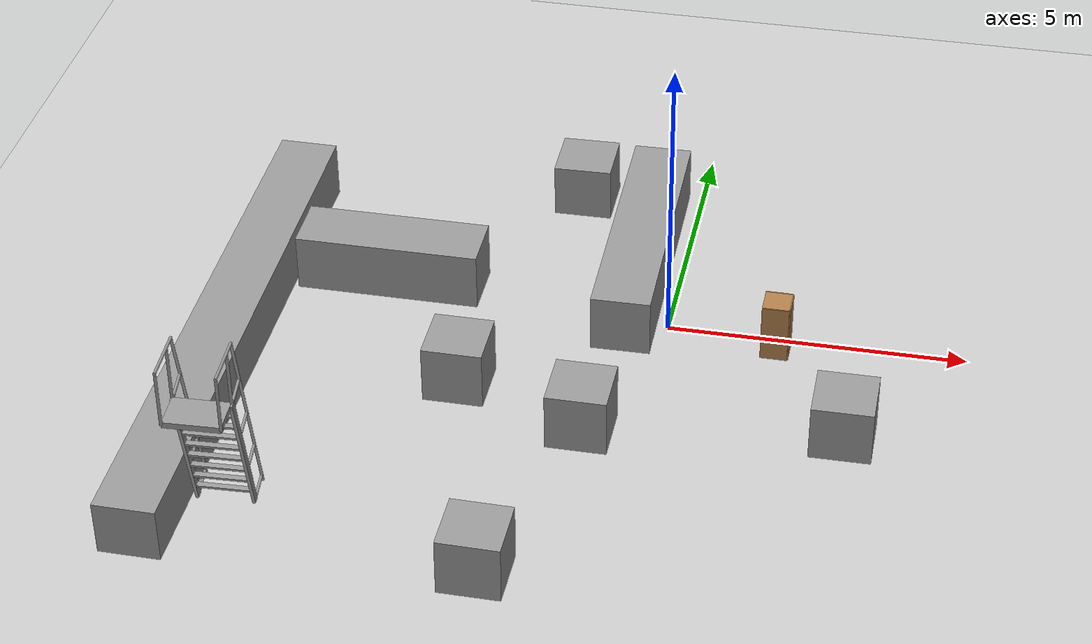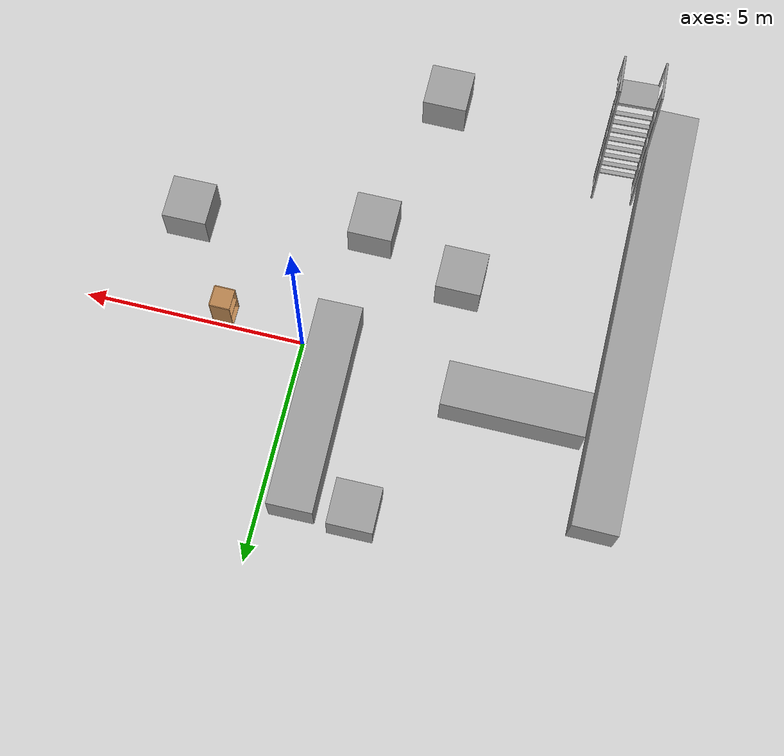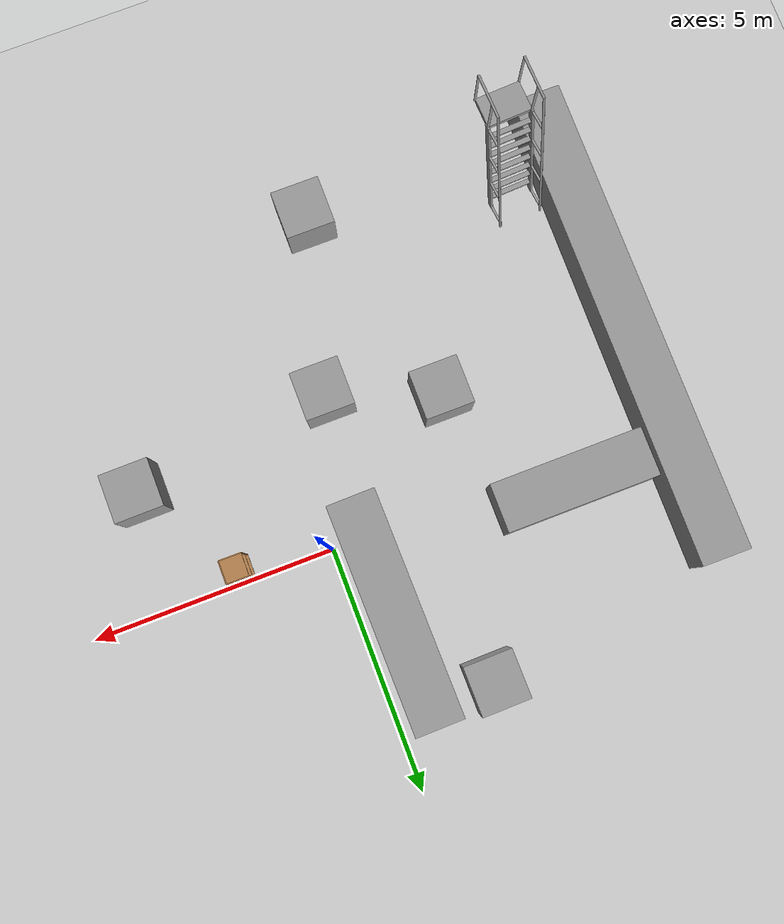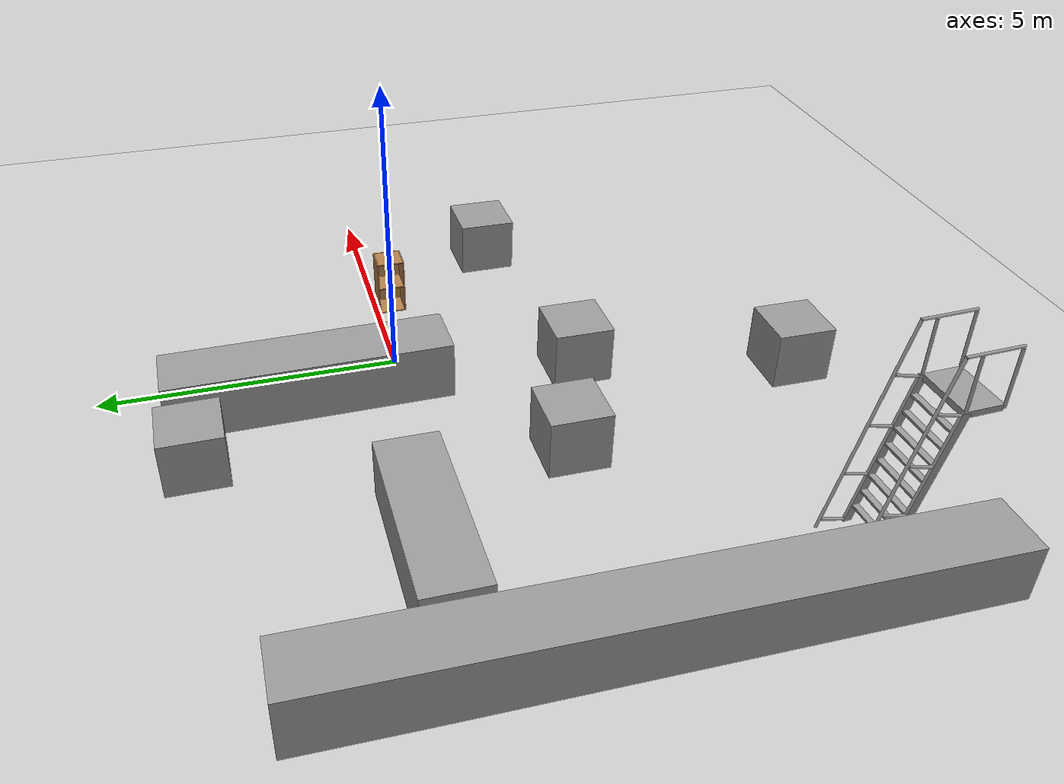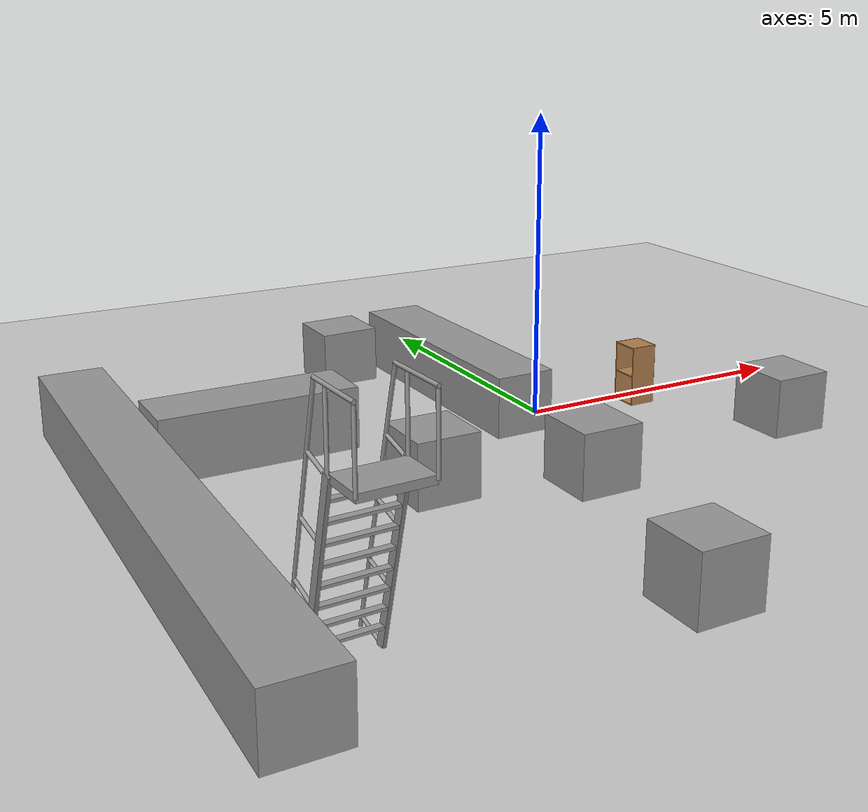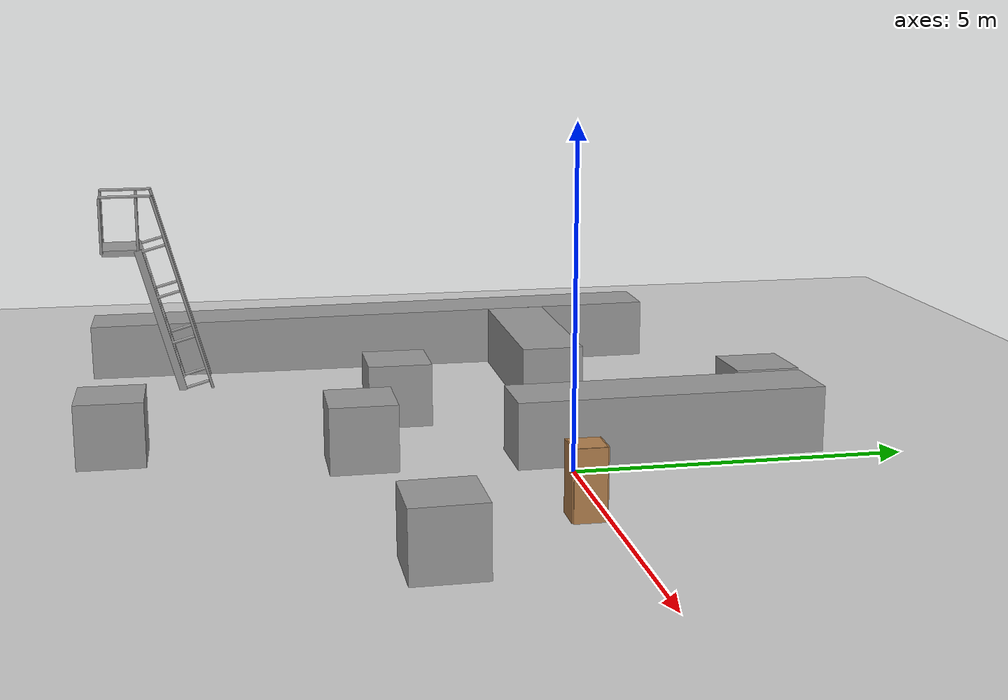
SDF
<sdf version="1.6">
 <world name="default">
  <light name="sun" type="directional">
   <pose>0 0 10 0 -0 0</pose>
   <diffuse>0.8 0.8 0.8 1</diffuse>
   <specular>0.1 0.1 0.1 1</specular>
   <attenuation>
    <range>1000</range>
    <constant>0.9</constant>
    <linear>0.01</linear>
    <quadratic>0.001</quadratic>
   </attenuation>
   <direction>-0.5 0.5 -1</direction>
  </light>
  <model name="ground_plane">
   <static>1</static>
   <link name="link">
    <collision name="collision">
     <geometry><plane><normal>0 0 1</normal><size>100 100</size></plane></geometry>
     <surface><friction><ode><mu>100</mu><mu2>50</mu2></ode></friction></surface>
    </collision>
    <visual name="visual">
     <cast_shadows>0</cast_shadows>
     <geometry><plane><normal>0 0 1</normal><size>100 100</size></plane></geometry>
     <material>
      <script><uri>file://media/materials/scripts/gazebo.material</uri><name>Gazebo/Grey</name></script>
     </material>
    </visual>
   </link>
  </model>
  <gravity>0 0 -9.8</gravity>
  <magnetic_field>6e-06 2.3e-05 -4.2e-05</magnetic_field>
  <atmosphere type="adiabatic"/>
  <physics name="default_physics" default="0" type="ode">
   <max_step_size>0.001</max_step_size>
   <real_time_factor>1</real_time_factor>
   <real_time_update_rate>1000</real_time_update_rate>
  </physics>
  <scene><ambient>0.4 0.4 0.4 1</ambient><background>0.7 0.7 0.7 1</background><shadows>1</shadows></scene>
  <spherical_coordinates>
   <surface_model>EARTH_WGS84</surface_model>
   <latitude_deg>0</latitude_deg>
   <longitude_deg>0</longitude_deg>
   <elevation>0</elevation>
   <heading_deg>0</heading_deg>
  </spherical_coordinates>
  <model name="cabinet">
   <static>1</static>
   <link name="cabinet_bottom_plate">
    <inertial>
     <pose>0 0 -1 0 -0 0</pose>
     <inertia><ixx>2.05</ixx><ixy>0</ixy><ixz>0</ixz><iyy>2.05</iyy><iyz>0</iyz><izz>2.05</izz></inertia>
     <mass>25</mass>
    </inertial>
    <collision name="cabinet_bottom_plate_geom">
     <pose>0 0 0.01 0 -0 0</pose>
     <geometry><box><size>0.45 0.45 0.02</size></box></geometry>
    </collision>
    <visual name="cabinet_bottom_plate_geom_visual">
     <pose>0 0 0.01 0 -0 0</pose>
     <geometry><box><size>0.45 0.45 0.02</size></box></geometry>
     <material>
      <script><uri>file://media/materials/scripts/gazebo.material</uri><name>Gazebo/Wood</name></script>
     </material>
    </visual>
    <collision name="cabinet_bottom_plate_geom_cabinet_back_plate">
     <pose>0.235 0 0.51 0 -0 0</pose>
     <geometry><box><size>0.02 0.45 1.02</size></box></geometry>
    </collision>
    <visual name="cabinet_bottom_plate_geom_cabinet_back_plate_visual">
     <pose>0.235 0 0.51 0 -0 0</pose>
     <geometry><box><size>0.02 0.45 1.02</size></box></geometry>
     <material>
      <script><uri>file://media/materials/scripts/gazebo.material</uri><name>Gazebo/Wood</name></script>
     </material>
    </visual>
    <collision name="cabinet_bottom_plate_geom_cabinet_left_plate">
     <pose>0 0.235 0.51 0 -0 0</pose>
     <geometry><box><size>0.45 0.02 1.02</size></box></geometry>
    </collision>
    <visual name="cabinet_bottom_plate_geom_cabinet_left_plate_visual">
     <pose>0 0.235 0.51 0 -0 0</pose>
     <geometry><box><size>0.45 0.02 1.02</size></box></geometry>
     <material>
      <script><uri>file://media/materials/scripts/gazebo.material</uri><name>Gazebo/Wood</name></script>
     </material>
    </visual>
    <collision name="cabinet_bottom_plate_geom_cabinet_middle_plate">
     <pose>0 0 0.51 0 -0 0</pose>
     <geometry><box><size>0.45 0.45 0.02</size></box></geometry>
    </collision>
    <visual name="cabinet_bottom_plate_geom_cabinet_middle_plate_visual">
     <pose>0 0 0.51 0 -0 0</pose>
     <geometry><box><size>0.45 0.45 0.02</size></box></geometry>
     <material>
      <script><uri>file://media/materials/scripts/gazebo.material</uri><name>Gazebo/Wood</name></script>
     </material>
    </visual>
    <collision name="cabinet_bottom_plate_geom_cabinet_right_plate">
     <pose>0 -0.235 0.51 0 -0 0</pose>
     <geometry><box><size>0.45 0.02 1.02</size></box></geometry>
    </collision>
    <visual name="cabinet_bottom_plate_geom_cabinet_right_plate_visual">
     <pose>0 -0.235 0.51 0 -0 0</pose>
     <geometry><box><size>0.45 0.02 1.02</size></box></geometry>
     <material>
      <script><uri>file://media/materials/scripts/gazebo.material</uri><name>Gazebo/Wood</name></script>
     </material>
    </visual>
    <collision name="cabinet_bottom_plate_geom_cabinet_top_plate">
     <pose>0 0 1.01 0 -0 0</pose>
     <geometry><box><size>0.45 0.45 0.02</size></box></geometry>
    </collision>
    <visual name="cabinet_bottom_plate_geom_cabinet_top_plate_visual">
     <pose>0 0 1.01 0 -0 0</pose>
     <geometry><box><size>0.45 0.45 0.02</size></box></geometry>
     <material>
      <script><uri>file://media/materials/scripts/gazebo.material</uri><name>Gazebo/Wood</name></script>
     </material>
    </visual>
   </link>
   <pose>1.83949 -0.283684 0 0 0 -0.003676</pose>
  </model>
  <model name="ladder_75deg_2rails">
   <static>1</static>
   <link name="step0">
    <pose>0 0.071453 0.266667 0 -0 0</pose>
    <inertial>
     <mass>9.75482</mass>
     <inertia>
      <ixx>0.00957124</ixx>
      <iyy>0.65963</iyy>
      <izz>0.666842</izz>
      <ixy>0</ixy>
      <ixz>0</ixz>
      <iyz>0</iyz>
     </inertia>
    </inertial>
    <collision name="collision"><geometry><box><size>0.9 0.1016 0.0381</size></box></geometry></collision>
    <visual name="visual">
     <geometry><box><size>0.9 0.1016 0.0381</size></box></geometry>
     <material>
      <script><uri>file://media/materials/scripts/gazebo.material</uri><name>Gazebo/Grey</name></script>
     </material>
    </visual>
   </link>
   <link name="step1">
    <pose>0 0.142906 0.533333 0 -0 0</pose>
    <inertial>
     <mass>9.75482</mass>
     <inertia>
      <ixx>0.00957124</ixx>
      <iyy>0.65963</iyy>
      <izz>0.666842</izz>
      <ixy>0</ixy>
      <ixz>0</ixz>
      <iyz>0</iyz>
     </inertia>
    </inertial>
    <collision name="collision"><geometry><box><size>0.9 0.1016 0.0381</size></box></geometry></collision>
    <visual name="visual">
     <geometry><box><size>0.9 0.1016 0.0381</size></box></geometry>
     <material>
      <script><uri>file://media/materials/scripts/gazebo.material</uri><name>Gazebo/Grey</name></script>
     </material>
    </visual>
   </link>
   <link name="step2">
    <pose>0 0.214359 0.8 0 -0 0</pose>
    <inertial>
     <mass>9.75482</mass>
     <inertia>
      <ixx>0.00957124</ixx>
      <iyy>0.65963</iyy>
      <izz>0.666842</izz>
      <ixy>0</ixy>
      <ixz>0</ixz>
      <iyz>0</iyz>
     </inertia>
    </inertial>
    <collision name="collision"><geometry><box><size>0.9 0.1016 0.0381</size></box></geometry></collision>
    <visual name="visual">
     <geometry><box><size>0.9 0.1016 0.0381</size></box></geometry>
     <material>
      <script><uri>file://media/materials/scripts/gazebo.material</uri><name>Gazebo/Grey</name></script>
     </material>
    </visual>
   </link>
   <link name="step3">
    <pose>0 0.285812 1.06667 0 -0 0</pose>
    <inertial>
     <mass>9.75482</mass>
     <inertia>
      <ixx>0.00957124</ixx>
      <iyy>0.65963</iyy>
      <izz>0.666842</izz>
      <ixy>0</ixy>
      <ixz>0</ixz>
      <iyz>0</iyz>
     </inertia>
    </inertial>
    <collision name="collision"><geometry><box><size>0.9 0.1016 0.0381</size></box></geometry></collision>
    <visual name="visual">
     <geometry><box><size>0.9 0.1016 0.0381</size></box></geometry>
     <material>
      <script><uri>file://media/materials/scripts/gazebo.material</uri><name>Gazebo/Grey</name></script>
     </material>
    </visual>
   </link>
   <link name="step4">
    <pose>0 0.357266 1.33333 0 -0 0</pose>
    <inertial>
     <mass>9.75482</mass>
     <inertia>
      <ixx>0.00957124</ixx>
      <iyy>0.65963</iyy>
      <izz>0.666842</izz>
      <ixy>0</ixy>
      <ixz>0</ixz>
      <iyz>0</iyz>
     </inertia>
    </inertial>
    <collision name="collision"><geometry><box><size>0.9 0.1016 0.0381</size></box></geometry></collision>
    <visual name="visual">
     <geometry><box><size>0.9 0.1016 0.0381</size></box></geometry>
     <material>
      <script><uri>file://media/materials/scripts/gazebo.material</uri><name>Gazebo/Grey</name></script>
     </material>
    </visual>
   </link>
   <link name="step5">
    <pose>0 0.428719 1.6 0 -0 0</pose>
    <inertial>
     <mass>9.75482</mass>
     <inertia>
      <ixx>0.00957124</ixx>
      <iyy>0.65963</iyy>
      <izz>0.666842</izz>
      <ixy>0</ixy>
      <ixz>0</ixz>
      <iyz>0</iyz>
     </inertia>
    </inertial>
    <collision name="collision"><geometry><box><size>0.9 0.1016 0.0381</size></box></geometry></collision>
    <visual name="visual">
     <geometry><box><size>0.9 0.1016 0.0381</size></box></geometry>
     <material>
      <script><uri>file://media/materials/scripts/gazebo.material</uri><name>Gazebo/Grey</name></script>
     </material>
    </visual>
   </link>
   <link name="step6">
    <pose>0 0.500172 1.86667 0 -0 0</pose>
    <inertial>
     <mass>9.75482</mass>
     <inertia>
      <ixx>0.00957124</ixx>
      <iyy>0.65963</iyy>
      <izz>0.666842</izz>
      <ixy>0</ixy>
      <ixz>0</ixz>
      <iyz>0</iyz>
     </inertia>
    </inertial>
    <collision name="collision"><geometry><box><size>0.9 0.1016 0.0381</size></box></geometry></collision>
    <visual name="visual">
     <geometry><box><size>0.9 0.1016 0.0381</size></box></geometry>
     <material>
      <script><uri>file://media/materials/scripts/gazebo.material</uri><name>Gazebo/Grey</name></script>
     </material>
    </visual>
   </link>
   <link name="step7">
    <pose>0 0.571625 2.13333 0 -0 0</pose>
    <inertial>
     <mass>9.75482</mass>
     <inertia>
      <ixx>0.00957124</ixx>
      <iyy>0.65963</iyy>
      <izz>0.666842</izz>
      <ixy>0</ixy>
      <ixz>0</ixz>
      <iyz>0</iyz>
     </inertia>
    </inertial>
    <collision name="collision"><geometry><box><size>0.9 0.1016 0.0381</size></box></geometry></collision>
    <visual name="visual">
     <geometry><box><size>0.9 0.1016 0.0381</size></box></geometry>
     <material>
      <script><uri>file://media/materials/scripts/gazebo.material</uri><name>Gazebo/Grey</name></script>
     </material>
    </visual>
   </link>
   <link name="landing">
    <pose>0 0.943078 2.4 0 -0 0</pose>
    <inertial>
     <mass>57.6072</mass>
     <inertia><ixx>1.73518</ixx><iyy>3.89545</iyy><izz>5.6167</izz><ixy>0</ixy><ixz>0</ixz><iyz>0</iyz></inertia>
    </inertial>
    <collision name="collision"><geometry><box><size>0.9 0.6 0.1016</size></box></geometry></collision>
    <visual name="visual">
     <geometry><box><size>0.9 0.6 0.1016</size></box></geometry>
     <material>
      <script><uri>file://media/materials/scripts/gazebo.material</uri><name>Gazebo/Grey</name></script>
     </material>
    </visual>
   </link>
   <link name="left_side_wall">
    <pose>-0.45 0.321539 1.2 1.309 -0 0</pose>
    <collision name="collision"><geometry><box><size>0.0508 2.56466 0.13</size></box></geometry></collision>
    <visual name="visual">
     <geometry><box><size>0.0508 2.56466 0.13</size></box></geometry>
     <material>
      <script><uri>file://media/materials/scripts/gazebo.material</uri><name>Gazebo/Grey</name></script>
     </material>
    </visual>
   </link>
   <link name="right_side_wall">
    <pose>0.45 0.321539 1.2 1.309 -0 0</pose>
    <collision name="collision"><geometry><box><size>0.0508 2.56466 0.13</size></box></geometry></collision>
    <visual name="visual">
     <geometry><box><size>0.0508 2.56466 0.13</size></box></geometry>
     <material>
      <script><uri>file://media/materials/scripts/gazebo.material</uri><name>Gazebo/Grey</name></script>
     </material>
    </visual>
   </link>
   <link name="left_railing_long">
    <pose>-0.45 -0.053461 1.66651 -0.261799 0 0</pose>
    <collision name="collision">
     <geometry><cylinder><radius>0.02413</radius><length>3.51529</length></cylinder></geometry>
    </collision>
    <visual name="visual">
     <geometry><cylinder><radius>0.02413</radius><length>3.51529</length></cylinder></geometry>
     <material>
      <script><uri>file://media/materials/scripts/gazebo.material</uri><name>Gazebo/Grey</name></script>
     </material>
    </visual>
   </link>
   <link name="left_railing_upright0">
    <pose>-0.45 -0.210089 0.056293 1.309 -0 0</pose>
    <collision name="collision">
     <geometry><cylinder><radius>0.02413</radius><length>0.482963</length></cylinder></geometry>
    </collision>
    <visual name="visual">
     <geometry><cylinder><radius>0.02413</radius><length>0.482963</length></cylinder></geometry>
     <material>
      <script><uri>file://media/materials/scripts/gazebo.material</uri><name>Gazebo/Grey</name></script>
     </material>
    </visual>
   </link>
   <link name="left_railing_upright1">
    <pose>-0.45 0.00427 0.856293 1.309 -0 0</pose>
    <collision name="collision">
     <geometry><cylinder><radius>0.02413</radius><length>0.482963</length></cylinder></geometry>
    </collision>
    <visual name="visual">
     <geometry><cylinder><radius>0.02413</radius><length>0.482963</length></cylinder></geometry>
     <material>
      <script><uri>file://media/materials/scripts/gazebo.material</uri><name>Gazebo/Grey</name></script>
     </material>
    </visual>
   </link>
   <link name="left_railing_upright2">
    <pose>-0.45 0.21863 1.65629 1.309 -0 0</pose>
    <collision name="collision">
     <geometry><cylinder><radius>0.02413</radius><length>0.482963</length></cylinder></geometry>
    </collision>
    <visual name="visual">
     <geometry><cylinder><radius>0.02413</radius><length>0.482963</length></cylinder></geometry>
     <material>
      <script><uri>file://media/materials/scripts/gazebo.material</uri><name>Gazebo/Grey</name></script>
     </material>
    </visual>
   </link>
   <link name="left_railing_upright3">
    <pose>-0.45 0.432989 2.45629 1.309 -0 0</pose>
    <collision name="collision">
     <geometry><cylinder><radius>0.02413</radius><length>0.482963</length></cylinder></geometry>
    </collision>
    <visual name="visual">
     <geometry><cylinder><radius>0.02413</radius><length>0.482963</length></cylinder></geometry>
     <material>
      <script><uri>file://media/materials/scripts/gazebo.material</uri><name>Gazebo/Grey</name></script>
     </material>
    </visual>
   </link>
   <link name="left_railing_landing_top">
    <pose>-0.45 0.818078 3.35714 1.5708 -0 0</pose>
    <collision name="collision">
     <geometry><cylinder><radius>0.02413</radius><length>0.87413</length></cylinder></geometry>
    </collision>
    <visual name="visual">
     <geometry><cylinder><radius>0.02413</radius><length>0.87413</length></cylinder></geometry>
     <material>
      <script><uri>file://media/materials/scripts/gazebo.material</uri><name>Gazebo/Grey</name></script>
     </material>
    </visual>
   </link>
   <link name="left_railing_landing_upright_0">
    <pose>-0.45 0.643078 2.86651 0 -0 0</pose>
    <collision name="collision">
     <geometry><cylinder><radius>0.02413</radius><length>0.933013</length></cylinder></geometry>
    </collision>
    <visual name="visual">
     <geometry><cylinder><radius>0.02413</radius><length>0.933013</length></cylinder></geometry>
     <material>
      <script><uri>file://media/materials/scripts/gazebo.material</uri><name>Gazebo/Grey</name></script>
     </material>
    </visual>
   </link>
   <link name="left_railing_landing_upright_1">
    <pose>-0.45 1.24308 2.86651 0 -0 0</pose>
    <collision name="collision">
     <geometry><cylinder><radius>0.02413</radius><length>0.933013</length></cylinder></geometry>
    </collision>
    <visual name="visual">
     <geometry><cylinder><radius>0.02413</radius><length>0.933013</length></cylinder></geometry>
     <material>
      <script><uri>file://media/materials/scripts/gazebo.material</uri><name>Gazebo/Grey</name></script>
     </material>
    </visual>
   </link>
   <link name="right_railing_long">
    <pose>0.45 -0.053461 1.66651 -0.261799 0 0</pose>
    <collision name="collision">
     <geometry><cylinder><radius>0.02413</radius><length>3.51529</length></cylinder></geometry>
    </collision>
    <visual name="visual">
     <geometry><cylinder><radius>0.02413</radius><length>3.51529</length></cylinder></geometry>
     <material>
      <script><uri>file://media/materials/scripts/gazebo.material</uri><name>Gazebo/Grey</name></script>
     </material>
    </visual>
   </link>
   <link name="right_railing_upright0">
    <pose>0.45 -0.210089 0.056293 1.309 -0 0</pose>
    <collision name="collision">
     <geometry><cylinder><radius>0.02413</radius><length>0.482963</length></cylinder></geometry>
    </collision>
    <visual name="visual">
     <geometry><cylinder><radius>0.02413</radius><length>0.482963</length></cylinder></geometry>
     <material>
      <script><uri>file://media/materials/scripts/gazebo.material</uri><name>Gazebo/Grey</name></script>
     </material>
    </visual>
   </link>
   <link name="right_railing_upright1">
    <pose>0.45 0.00427 0.856293 1.309 -0 0</pose>
    <collision name="collision">
     <geometry><cylinder><radius>0.02413</radius><length>0.482963</length></cylinder></geometry>
    </collision>
    <visual name="visual">
     <geometry><cylinder><radius>0.02413</radius><length>0.482963</length></cylinder></geometry>
     <material>
      <script><uri>file://media/materials/scripts/gazebo.material</uri><name>Gazebo/Grey</name></script>
     </material>
    </visual>
   </link>
   <link name="right_railing_upright2">
    <pose>0.45 0.21863 1.65629 1.309 -0 0</pose>
    <collision name="collision">
     <geometry><cylinder><radius>0.02413</radius><length>0.482963</length></cylinder></geometry>
    </collision>
    <visual name="visual">
     <geometry><cylinder><radius>0.02413</radius><length>0.482963</length></cylinder></geometry>
     <material>
      <script><uri>file://media/materials/scripts/gazebo.material</uri><name>Gazebo/Grey</name></script>
     </material>
    </visual>
   </link>
   <link name="right_railing_upright3">
    <pose>0.45 0.432989 2.45629 1.309 -0 0</pose>
    <collision name="collision">
     <geometry><cylinder><radius>0.02413</radius><length>0.482963</length></cylinder></geometry>
    </collision>
    <visual name="visual">
     <geometry><cylinder><radius>0.02413</radius><length>0.482963</length></cylinder></geometry>
     <material>
      <script><uri>file://media/materials/scripts/gazebo.material</uri><name>Gazebo/Grey</name></script>
     </material>
    </visual>
   </link>
   <link name="right_railing_landing_top">
    <pose>0.45 0.818078 3.35714 1.5708 -0 0</pose>
    <collision name="collision">
     <geometry><cylinder><radius>0.02413</radius><length>0.87413</length></cylinder></geometry>
    </collision>
    <visual name="visual">
     <geometry><cylinder><radius>0.02413</radius><length>0.87413</length></cylinder></geometry>
     <material>
      <script><uri>file://media/materials/scripts/gazebo.material</uri><name>Gazebo/Grey</name></script>
     </material>
    </visual>
   </link>
   <link name="right_railing_landing_upright_0">
    <pose>0.45 0.643078 2.86651 0 -0 0</pose>
    <collision name="collision">
     <geometry><cylinder><radius>0.02413</radius><length>0.933013</length></cylinder></geometry>
    </collision>
    <visual name="visual">
     <geometry><cylinder><radius>0.02413</radius><length>0.933013</length></cylinder></geometry>
     <material>
      <script><uri>file://media/materials/scripts/gazebo.material</uri><name>Gazebo/Grey</name></script>
     </material>
    </visual>
   </link>
   <link name="right_railing_landing_upright_1">
    <pose>0.45 1.24308 2.86651 0 -0 0</pose>
    <collision name="collision">
     <geometry><cylinder><radius>0.02413</radius><length>0.933013</length></cylinder></geometry>
    </collision>
    <visual name="visual">
     <geometry><cylinder><radius>0.02413</radius><length>0.933013</length></cylinder></geometry>
     <material>
      <script><uri>file://media/materials/scripts/gazebo.material</uri><name>Gazebo/Grey</name></script>
     </material>
    </visual>
   </link>
   <pose>-6.01089 -5.56869 0 0 0 -3.09847</pose>
  </model>
  <model name="unit_box_0">
   <pose>-1.83797 -6.52366 0.470632 -2.8e-05 0.006453 -0.004262</pose>
   <link name="link">
    <inertial>
     <mass>1</mass>
     <inertia>
      <ixx>0.166667</ixx>
      <ixy>0</ixy>
      <ixz>0</ixz>
      <iyy>0.166667</iyy>
      <iyz>0</iyz>
      <izz>0.166667</izz>
     </inertia>
    </inertial>
    <collision name="collision"><geometry><box><size>0.999997 1 1</size></box></geometry></collision>
    <visual name="visual">
     <geometry><box><size>0.999997 1 1</size></box></geometry>
     <material>
      <script><name>Gazebo/Grey</name><uri>file://media/materials/scripts/gazebo.material</uri></script>
     </material>
    </visual>
   </link>
  </model>
  <model name="unit_box_1">
   <pose>-0.926843 -2.95311 0.498464 1.57079 1.57014 1.5708</pose>
   <link name="link">
    <inertial>
     <mass>1</mass>
     <inertia>
      <ixx>0.166667</ixx>
      <ixy>0</ixy>
      <ixz>0</ixz>
      <iyy>0.166667</iyy>
      <iyz>0</iyz>
      <izz>0.166667</izz>
     </inertia>
    </inertial>
    <collision name="collision"><geometry><box><size>1 1 1</size></box></geometry></collision>
    <visual name="visual">
     <geometry><box><size>1 1 1</size></box></geometry>
     <material>
      <script><name>Gazebo/Grey</name><uri>file://media/materials/scripts/gazebo.material</uri></script>
     </material>
    </visual>
   </link>
  </model>
  <model name="unit_box_2">
   <pose>3.1975 -2.38985 0.457272 0.008588 -5.6e-05 0.006562</pose>
   <link name="link">
    <inertial>
     <mass>1</mass>
     <inertia>
      <ixx>0.166667</ixx>
      <ixy>0</ixy>
      <ixz>0</ixz>
      <iyy>0.166667</iyy>
      <iyz>0</iyz>
      <izz>0.166667</izz>
     </inertia>
    </inertial>
    <collision name="collision"><geometry><box><size>1 1 1</size></box></geometry></collision>
    <visual name="visual">
     <geometry><box><size>1 1 1</size></box></geometry>
     <material>
      <script><name>Gazebo/Grey</name><uri>file://media/materials/scripts/gazebo.material</uri></script>
     </material>
    </visual>
   </link>
  </model>
  <model name="unit_box_1_clone">
   <pose>-0.724997 1.55264 0.499932 1.5708 1.57074 1.58349</pose>
   <link name="link">
    <inertial>
     <mass>1</mass>
     <inertia>
      <ixx>0.166667</ixx>
      <ixy>0</ixy>
      <ixz>0</ixz>
      <iyy>0.166667</iyy>
      <iyz>0</iyz>
      <izz>0.166667</izz>
     </inertia>
    </inertial>
    <collision name="collision"><geometry><box><size>1 4.66104 1</size></box></geometry></collision>
    <visual name="visual">
     <geometry><box><size>1 4.66104 1</size></box></geometry>
     <material>
      <script><name>Gazebo/Grey</name><uri>file://media/materials/scripts/gazebo.material</uri></script>
     </material>
    </visual>
   </link>
  </model>
  <model name="unit_box_2_clone">
   <pose>-7.03209 -2.12648 0.457273 0.008588 5.7e-05 -0.006666</pose>
   <link name="link">
    <inertial>
     <mass>1</mass>
     <inertia>
      <ixx>0.166667</ixx>
      <ixy>0</ixy>
      <ixz>0</ixz>
      <iyy>0.166667</iyy>
      <iyz>0</iyz>
      <izz>0.166667</izz>
     </inertia>
    </inertial>
    <collision name="collision"><geometry><box><size>1 9.97579 1</size></box></geometry></collision>
    <visual name="visual">
     <geometry><box><size>1 9.97579 1</size></box></geometry>
     <material>
      <script><name>Gazebo/Grey</name><uri>file://media/materials/scripts/gazebo.material</uri></script>
     </material>
    </visual>
   </link>
  </model>
  <model name="unit_box_4">
   <pose>-3.1084 -2.153 0.499778 0 0.000142 0</pose>
   <link name="link">
    <inertial>
     <mass>1</mass>
     <inertia>
      <ixx>0.166667</ixx>
      <ixy>0</ixy>
      <ixz>0</ixz>
      <iyy>0.166667</iyy>
      <iyz>0</iyz>
      <izz>0.166667</izz>
     </inertia>
    </inertial>
    <collision name="collision"><geometry><box><size>1 1 1</size></box></geometry></collision>
    <visual name="visual">
     <geometry><box><size>1 1 1</size></box></geometry>
     <material>
      <script><name>Gazebo/Grey</name><uri>file://media/materials/scripts/gazebo.material</uri></script>
     </material>
    </visual>
   </link>
  </model>
  <model name="unit_box_4_clone">
   <pose>-4.85675 0.447483 0.499778 -0 0.000142 0.000422</pose>
   <link name="link">
    <inertial>
     <mass>1</mass>
     <inertia>
      <ixx>0.166667</ixx>
      <ixy>0</ixy>
      <ixz>0</ixz>
      <iyy>0.166667</iyy>
      <iyz>0</iyz>
      <izz>0.166667</izz>
     </inertia>
    </inertial>
    <collision name="collision"><geometry><box><size>3.13733 1 1</size></box></geometry></collision>
    <visual name="visual">
     <geometry><box><size>3.13733 1 1</size></box></geometry>
     <material>
      <script><name>Gazebo/Grey</name><uri>file://media/materials/scripts/gazebo.material</uri></script>
     </material>
    </visual>
   </link>
  </model>
  <model name="unit_box_3_0">
   <pose>-2.05276 3.48601 0.438382 -0.000111 -0.011345 0.009786</pose>
   <link name="link">
    <inertial>
     <mass>1</mass>
     <inertia>
      <ixx>0.166667</ixx>
      <ixy>0</ixy>
      <ixz>0</ixz>
      <iyy>0.166667</iyy>
      <iyz>0</iyz>
      <izz>0.166667</izz>
     </inertia>
    </inertial>
    <collision name="collision"><geometry><box><size>1.00001 1 1</size></box></geometry></collision>
    <visual name="visual">
     <geometry><box><size>1.00001 1 1</size></box></geometry>
     <material>
      <script><name>Gazebo/Grey</name><uri>file://media/materials/scripts/gazebo.material</uri></script>
     </material>
    </visual>
   </link>
  </model>
 </world>
</sdf>
